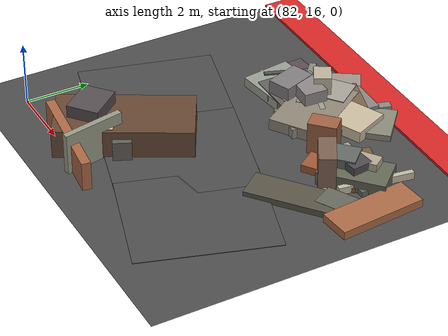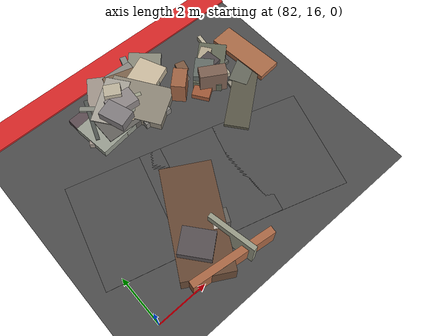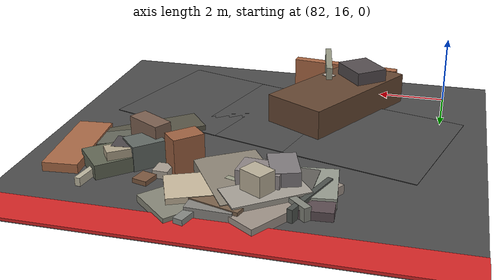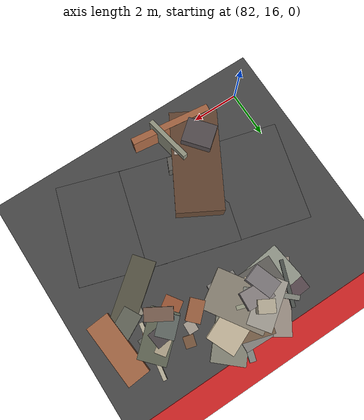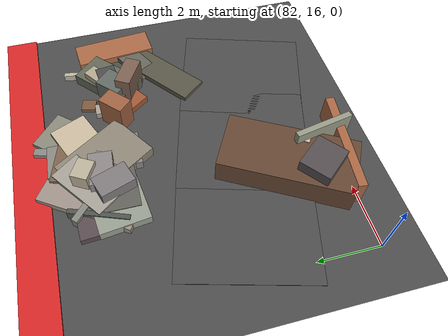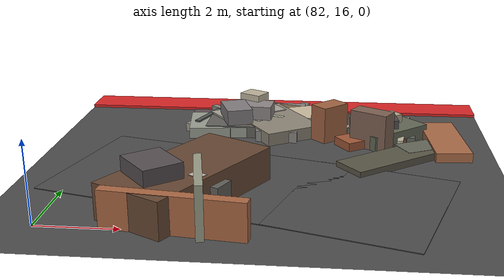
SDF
<sdf version="1.6">
 <world name="navitas_arena">
  <model name="ground_plane">
   <static>true</static>
   <link name="link">
    <collision name="collision">
     <geometry><plane><normal>0 0 1</normal><size>400 400</size></plane></geometry>
     <surface><friction><ode><mu>0.800</mu><mu2>0.800</mu2></ode></friction></surface>
    </collision>
    <visual name="visual">
     <cast_shadows>false</cast_shadows>
     <geometry><plane><normal>0 0 1</normal><size>400 400</size></plane></geometry>
     <material>
      <specular>0.04 0.04 0.04 1</specular>
      <script>
       <uri>file://media/materials/scripts/navitas_asphalt.material</uri>
       <name>Navitas/RealArenaAsphalt</name>
      </script>
     </material>
    </visual>
   </link>
  </model>
  <model name="brd_zor_N">
   <static>true</static>
   <pose>90.000 25.800 0.040 0 0 0.000</pose>
   <link name="link">
    <collision name="col"><geometry><box><size>53.200 1.600 0.080</size></box></geometry></collision>
    <visual name="vis">
     <geometry><box><size>53.200 1.600 0.080</size></box></geometry>
     <material>
      <ambient>0.85 0.15 0.15 1</ambient>
      <diffuse>0.85 0.15 0.15 1</diffuse>
      <specular>0.04 0.04 0.04 1</specular>
     </material>
    </visual>
   </link>
  </model>
  <model name="road_zor_3_24">
   <static>true</static>
   <pose>89.339 17.910 0.040 0 0 2.837</pose>
   <link name="link">
    <collision name="col"><geometry><box><size>3.631 4.200 0.020</size></box></geometry></collision>
    <visual name="vis">
     <geometry><box><size>3.631 4.200 0.020</size></box></geometry>
     <material>
      <specular>0.04 0.04 0.04 1</specular>
      <script>
       <uri>file://media/materials/scripts/navitas_asphalt.material</uri>
       <name>Navitas/RealArenaAsphalt</name>
      </script>
     </material>
    </visual>
   </link>
  </model>
  <model name="road_zor_3_25">
   <static>true</static>
   <pose>86.586 18.730 0.040 0 0 2.866</pose>
   <link name="link">
    <collision name="col"><geometry><box><size>3.915 4.200 0.020</size></box></geometry></collision>
    <visual name="vis">
     <geometry><box><size>3.915 4.200 0.020</size></box></geometry>
     <material>
      <specular>0.04 0.04 0.04 1</specular>
      <script>
       <uri>file://media/materials/scripts/navitas_asphalt.material</uri>
       <name>Navitas/RealArenaAsphalt</name>
      </script>
     </material>
    </visual>
   </link>
  </model>
  <model name="road_zor_3_26">
   <static>true</static>
   <pose>83.707 19.520 0.040 0 0 2.881</pose>
   <link name="link">
    <collision name="col"><geometry><box><size>3.855 4.200 0.020</size></box></geometry></collision>
    <visual name="vis">
     <geometry><box><size>3.855 4.200 0.020</size></box></geometry>
     <material>
      <specular>0.04 0.04 0.04 1</specular>
      <script>
       <uri>file://media/materials/scripts/navitas_asphalt.material</uri>
       <name>Navitas/RealArenaAsphalt</name>
      </script>
     </material>
    </visual>
   </link>
  </model>
  <model name="blk_zor_2_3_3">
   <static>true</static>
   <pose>85.344 16.767 0.000 0 0 0</pose>
   <link name="link">
    <collision name="col_0">
     <pose>0.185 0.300 0.461 0.000 0.000 0.975</pose>
     <geometry><box><size>0.261 0.336 0.922</size></box></geometry>
    </collision>
    <visual name="vis_0">
     <pose>0.185 0.300 0.461 0.000 0.000 0.975</pose>
     <geometry><box><size>0.261 0.336 0.922</size></box></geometry>
     <material>
      <ambient>0.74 0.70 0.65 1</ambient>
      <diffuse>0.80 0.75 0.70 1</diffuse>
      <specular>0.05 0.05 0.045 1</specular>
     </material>
    </visual>
    <collision name="col_1">
     <pose>0.241 0.659 0.328 0.000 0.000 2.717</pose>
     <geometry><box><size>1.172 0.563 0.656</size></box></geometry>
    </collision>
    <visual name="vis_1">
     <pose>0.241 0.659 0.328 0.000 0.000 2.717</pose>
     <geometry><box><size>1.172 0.563 0.656</size></box></geometry>
     <material>
      <ambient>0.36 0.34 0.32 1</ambient>
      <diffuse>0.38 0.37 0.35 1</diffuse>
      <specular>0.05 0.05 0.045 1</specular>
     </material>
    </visual>
    <collision name="col_2">
     <pose>-0.830 0.220 0.647 0.000 0.000 2.256</pose>
     <geometry><box><size>1.188 0.996 1.293</size></box></geometry>
    </collision>
    <visual name="vis_2">
     <pose>-0.830 0.220 0.647 0.000 0.000 2.256</pose>
     <geometry><box><size>1.188 0.996 1.293</size></box></geometry>
     <material>
      <ambient>0.32 0.29 0.29 1</ambient>
      <diffuse>0.34 0.31 0.32 1</diffuse>
      <specular>0.05 0.05 0.045 1</specular>
     </material>
    </visual>
    <collision name="col_3">
     <pose>-0.165 -0.839 0.458 0.000 0.000 3.022</pose>
     <geometry><box><size>3.356 0.281 0.916</size></box></geometry>
    </collision>
    <visual name="vis_3">
     <pose>-0.165 -0.839 0.458 0.000 0.000 3.022</pose>
     <geometry><box><size>3.356 0.281 0.916</size></box></geometry>
     <material>
      <ambient>0.62 0.38 0.25 1</ambient>
      <diffuse>0.67 0.41 0.27 1</diffuse>
      <specular>0.05 0.05 0.045 1</specular>
     </material>
    </visual>
    <collision name="col_4">
     <pose>0.299 -0.264 0.641 0.000 0.000 1.761</pose>
     <geometry><box><size>1.934 0.186 1.283</size></box></geometry>
    </collision>
    <visual name="vis_4">
     <pose>0.299 -0.264 0.641 0.000 0.000 1.761</pose>
     <geometry><box><size>1.934 0.186 1.283</size></box></geometry>
     <material>
      <ambient>0.55 0.56 0.49 1</ambient>
      <diffuse>0.60 0.61 0.53 1</diffuse>
      <specular>0.05 0.05 0.045 1</specular>
     </material>
    </visual>
    <collision name="col_5">
     <pose>0.365 0.943 0.295 0.000 0.000 1.458</pose>
     <geometry><box><size>0.307 0.430 0.589</size></box></geometry>
    </collision>
    <visual name="vis_5">
     <pose>0.365 0.943 0.295 0.000 0.000 1.458</pose>
     <geometry><box><size>0.307 0.430 0.589</size></box></geometry>
     <material>
      <ambient>0.43 0.26 0.19 1</ambient>
      <diffuse>0.47 0.28 0.20 1</diffuse>
      <specular>0.05 0.05 0.045 1</specular>
     </material>
    </visual>
    <collision name="col_6">
     <pose>-0.208 0.989 0.453 0.000 0.000 1.061</pose>
     <geometry><box><size>4.135 1.926 0.906</size></box></geometry>
    </collision>
    <visual name="vis_6">
     <pose>-0.208 0.989 0.453 0.000 0.000 1.061</pose>
     <geometry><box><size>4.135 1.926 0.906</size></box></geometry>
     <material>
      <ambient>0.37 0.26 0.19 1</ambient>
      <diffuse>0.40 0.28 0.20 1</diffuse>
      <specular>0.05 0.05 0.045 1</specular>
     </material>
    </visual>
   </link>
  </model>
  <model name="deb_zor_61">
   <static>true</static>
   <pose>87.345 23.802 0.000 0 0 0</pose>
   <link name="link">
    <collision name="col_0">
     <pose>-0.412 -0.286 0.157 0.000 0.000 1.533</pose>
     <geometry><box><size>2.917 1.187 0.314</size></box></geometry>
    </collision>
    <visual name="vis_0">
     <pose>-0.412 -0.286 0.157 0.000 0.000 1.533</pose>
     <geometry><box><size>2.917 1.187 0.314</size></box></geometry>
     <material>
      <ambient>0.50 0.49 0.47 1</ambient>
      <diffuse>0.54 0.53 0.51 1</diffuse>
      <specular>0.05 0.05 0.045 1</specular>
     </material>
    </visual>
    <collision name="col_1">
     <pose>-0.843 -0.285 0.181 0.000 0.000 -0.313</pose>
     <geometry><box><size>1.056 0.161 0.362</size></box></geometry>
    </collision>
    <visual name="vis_1">
     <pose>-0.843 -0.285 0.181 0.000 0.000 -0.313</pose>
     <geometry><box><size>1.056 0.161 0.362</size></box></geometry>
     <material>
      <ambient>0.57 0.59 0.50 1</ambient>
      <diffuse>0.62 0.63 0.54 1</diffuse>
      <specular>0.05 0.05 0.045 1</specular>
     </material>
    </visual>
    <collision name="col_2">
     <pose>-0.288 -0.134 0.179 0.000 0.000 0.409</pose>
     <geometry><box><size>2.785 1.222 0.358</size></box></geometry>
    </collision>
    <visual name="vis_2">
     <pose>-0.288 -0.134 0.179 0.000 0.000 0.409</pose>
     <geometry><box><size>2.785 1.222 0.358</size></box></geometry>
     <material>
      <ambient>0.74 0.69 0.59 1</ambient>
      <diffuse>0.80 0.74 0.63 1</diffuse>
      <specular>0.05 0.05 0.045 1</specular>
     </material>
    </visual>
    <collision name="col_3">
     <pose>-0.680 -0.170 0.100 0.000 0.000 1.468</pose>
     <geometry><box><size>1.597 0.995 0.200</size></box></geometry>
    </collision>
    <visual name="vis_3">
     <pose>-0.680 -0.170 0.100 0.000 0.000 1.468</pose>
     <geometry><box><size>1.597 0.995 0.200</size></box></geometry>
     <material>
      <ambient>0.63 0.37 0.28 1</ambient>
      <diffuse>0.68 0.40 0.30 1</diffuse>
      <specular>0.05 0.05 0.045 1</specular>
     </material>
    </visual>
    <collision name="col_4">
     <pose>0.011 0.816 0.115 0.000 0.000 1.282</pose>
     <geometry><box><size>1.559 0.262 0.231</size></box></geometry>
    </collision>
    <visual name="vis_4">
     <pose>0.011 0.816 0.115 0.000 0.000 1.282</pose>
     <geometry><box><size>1.559 0.262 0.231</size></box></geometry>
     <material>
      <ambient>0.49 0.50 0.48 1</ambient>
      <diffuse>0.53 0.54 0.52 1</diffuse>
      <specular>0.05 0.05 0.045 1</specular>
     </material>
    </visual>
    <collision name="col_5">
     <pose>0.256 0.195 0.099 0.000 0.000 0.847</pose>
     <geometry><box><size>2.517 1.373 0.198</size></box></geometry>
    </collision>
    <visual name="vis_5">
     <pose>0.256 0.195 0.099 0.000 0.000 0.847</pose>
     <geometry><box><size>2.517 1.373 0.198</size></box></geometry>
     <material>
      <ambient>0.50 0.50 0.44 1</ambient>
      <diffuse>0.54 0.54 0.48 1</diffuse>
      <specular>0.05 0.05 0.045 1</specular>
     </material>
    </visual>
   </link>
  </model>
  <model name="deb_zor_103">
   <static>true</static>
   <pose>85.871 23.565 0.000 0 0 0</pose>
   <link name="link">
    <collision name="col_0">
     <pose>-0.260 -0.384 0.143 0.000 0.000 2.045</pose>
     <geometry><box><size>1.470 0.944 0.285</size></box></geometry>
    </collision>
    <visual name="vis_0">
     <pose>-0.260 -0.384 0.143 0.000 0.000 2.045</pose>
     <geometry><box><size>1.470 0.944 0.285</size></box></geometry>
     <material>
      <ambient>0.42 0.31 0.23 1</ambient>
      <diffuse>0.45 0.33 0.25 1</diffuse>
      <specular>0.05 0.05 0.045 1</specular>
     </material>
    </visual>
    <collision name="col_1">
     <pose>-0.536 0.336 0.122 0.000 0.000 0.992</pose>
     <geometry><box><size>3.072 0.879 0.244</size></box></geometry>
    </collision>
    <visual name="vis_1">
     <pose>-0.536 0.336 0.122 0.000 0.000 0.992</pose>
     <geometry><box><size>3.072 0.879 0.244</size></box></geometry>
     <material>
      <ambient>0.58 0.53 0.50 1</ambient>
      <diffuse>0.63 0.58 0.54 1</diffuse>
      <specular>0.05 0.05 0.045 1</specular>
     </material>
    </visual>
    <collision name="col_2">
     <pose>-0.246 -0.446 0.153 0.000 0.000 0.126</pose>
     <geometry><box><size>2.754 1.569 0.306</size></box></geometry>
    </collision>
    <visual name="vis_2">
     <pose>-0.246 -0.446 0.153 0.000 0.000 0.126</pose>
     <geometry><box><size>2.754 1.569 0.306</size></box></geometry>
     <material>
      <ambient>0.56 0.58 0.53 1</ambient>
      <diffuse>0.60 0.62 0.57 1</diffuse>
      <specular>0.05 0.05 0.045 1</specular>
     </material>
    </visual>
    <collision name="col_3">
     <pose>0.046 -0.439 0.167 0.000 0.000 -0.011</pose>
     <geometry><box><size>2.218 1.501 0.334</size></box></geometry>
    </collision>
    <visual name="vis_3">
     <pose>0.046 -0.439 0.167 0.000 0.000 -0.011</pose>
     <geometry><box><size>2.218 1.501 0.334</size></box></geometry>
     <material>
      <ambient>0.36 0.35 0.33 1</ambient>
      <diffuse>0.39 0.38 0.36 1</diffuse>
      <specular>0.05 0.05 0.045 1</specular>
     </material>
    </visual>
    <collision name="col_4">
     <pose>0.022 0.279 0.194 0.000 0.000 0.638</pose>
     <geometry><box><size>2.068 1.023 0.389</size></box></geometry>
    </collision>
    <visual name="vis_4">
     <pose>0.022 0.279 0.194 0.000 0.000 0.638</pose>
     <geometry><box><size>2.068 1.023 0.389</size></box></geometry>
     <material>
      <ambient>0.61 0.59 0.56 1</ambient>
      <diffuse>0.66 0.64 0.60 1</diffuse>
      <specular>0.05 0.05 0.045 1</specular>
     </material>
    </visual>
   </link>
  </model>
  <model name="deb_zor_232">
   <static>true</static>
   <pose>86.352 23.901 0.000 0 0 0</pose>
   <link name="link">
    <collision name="col_0">
     <pose>0.534 0.292 0.172 0.000 0.000 -0.288</pose>
     <geometry><box><size>1.622 1.115 0.343</size></box></geometry>
    </collision>
    <visual name="vis_0">
     <pose>0.534 0.292 0.172 0.000 0.000 -0.288</pose>
     <geometry><box><size>1.622 1.115 0.343</size></box></geometry>
     <material>
      <ambient>0.46 0.36 0.27 1</ambient>
      <diffuse>0.49 0.39 0.30 1</diffuse>
      <specular>0.05 0.05 0.045 1</specular>
     </material>
    </visual>
    <collision name="col_1">
     <pose>-0.251 -0.545 0.378 0.000 0.000 -0.067</pose>
     <geometry><box><size>1.134 0.739 0.756</size></box></geometry>
    </collision>
    <visual name="vis_1">
     <pose>-0.251 -0.545 0.378 0.000 0.000 -0.067</pose>
     <geometry><box><size>1.134 0.739 0.756</size></box></geometry>
     <material>
      <ambient>0.52 0.49 0.50 1</ambient>
      <diffuse>0.56 0.53 0.53 1</diffuse>
      <specular>0.05 0.05 0.045 1</specular>
     </material>
    </visual>
    <collision name="col_2">
     <pose>0.509 0.193 0.091 0.000 0.000 0.950</pose>
     <geometry><box><size>1.021 0.182 0.182</size></box></geometry>
    </collision>
    <visual name="vis_2">
     <pose>0.509 0.193 0.091 0.000 0.000 0.950</pose>
     <geometry><box><size>1.021 0.182 0.182</size></box></geometry>
     <material>
      <ambient>0.62 0.33 0.27 1</ambient>
      <diffuse>0.66 0.36 0.29 1</diffuse>
      <specular>0.05 0.05 0.045 1</specular>
     </material>
    </visual>
    <collision name="col_3">
     <pose>-0.277 -0.027 0.474 0.000 0.000 1.056</pose>
     <geometry><box><size>0.533 0.670 0.947</size></box></geometry>
    </collision>
    <visual name="vis_3">
     <pose>-0.277 -0.027 0.474 0.000 0.000 1.056</pose>
     <geometry><box><size>0.533 0.670 0.947</size></box></geometry>
     <material>
      <ambient>0.69 0.65 0.56 1</ambient>
      <diffuse>0.74 0.70 0.61 1</diffuse>
      <specular>0.05 0.05 0.045 1</specular>
     </material>
    </visual>
    <collision name="col_4">
     <pose>0.378 -0.185 0.089 0.000 0.000 0.775</pose>
     <geometry><box><size>1.981 0.294 0.178</size></box></geometry>
    </collision>
    <visual name="vis_4">
     <pose>0.378 -0.185 0.089 0.000 0.000 0.775</pose>
     <geometry><box><size>1.981 0.294 0.178</size></box></geometry>
     <material>
      <ambient>0.44 0.29 0.21 1</ambient>
      <diffuse>0.48 0.31 0.22 1</diffuse>
      <specular>0.05 0.05 0.045 1</specular>
     </material>
    </visual>
   </link>
  </model>
  <model name="deb_zor_277">
   <static>true</static>
   <pose>85.793 23.462 0.000 0 0 0</pose>
   <link name="link">
    <collision name="col_0">
     <pose>-0.177 -0.404 0.385 0.000 0.000 1.906</pose>
     <geometry><box><size>1.118 0.742 0.771</size></box></geometry>
    </collision>
    <visual name="vis_0">
     <pose>-0.177 -0.404 0.385 0.000 0.000 1.906</pose>
     <geometry><box><size>1.118 0.742 0.771</size></box></geometry>
     <material>
      <ambient>0.48 0.45 0.46 1</ambient>
      <diffuse>0.51 0.49 0.50 1</diffuse>
      <specular>0.05 0.05 0.045 1</specular>
     </material>
    </visual>
    <collision name="col_1">
     <pose>0.927 -0.234 0.180 0.000 0.000 2.152</pose>
     <geometry><box><size>2.557 1.726 0.361</size></box></geometry>
    </collision>
    <visual name="vis_1">
     <pose>0.927 -0.234 0.180 0.000 0.000 2.152</pose>
     <geometry><box><size>2.557 1.726 0.361</size></box></geometry>
     <material>
      <ambient>0.52 0.49 0.43 1</ambient>
      <diffuse>0.56 0.53 0.47 1</diffuse>
      <specular>0.05 0.05 0.045 1</specular>
     </material>
    </visual>
    <collision name="col_2">
     <pose>0.734 0.054 0.104 0.000 0.000 2.528</pose>
     <geometry><box><size>1.802 0.254 0.209</size></box></geometry>
    </collision>
    <visual name="vis_2">
     <pose>0.734 0.054 0.104 0.000 0.000 2.528</pose>
     <geometry><box><size>1.802 0.254 0.209</size></box></geometry>
     <material>
      <ambient>0.45 0.47 0.44 1</ambient>
      <diffuse>0.49 0.50 0.47 1</diffuse>
      <specular>0.05 0.05 0.045 1</specular>
     </material>
    </visual>
    <collision name="col_3">
     <pose>-0.238 0.177 0.184 0.000 0.000 2.410</pose>
     <geometry><box><size>2.191 0.204 0.368</size></box></geometry>
    </collision>
    <visual name="vis_3">
     <pose>-0.238 0.177 0.184 0.000 0.000 2.410</pose>
     <geometry><box><size>2.191 0.204 0.368</size></box></geometry>
     <material>
      <ambient>0.49 0.50 0.46 1</ambient>
      <diffuse>0.53 0.54 0.50 1</diffuse>
      <specular>0.05 0.05 0.045 1</specular>
     </material>
    </visual>
    <collision name="col_4">
     <pose>-0.839 0.517 0.119 0.000 0.000 3.211</pose>
     <geometry><box><size>1.583 0.695 0.239</size></box></geometry>
    </collision>
    <visual name="vis_4">
     <pose>-0.839 0.517 0.119 0.000 0.000 3.211</pose>
     <geometry><box><size>1.583 0.695 0.239</size></box></geometry>
     <material>
      <ambient>0.33 0.28 0.29 1</ambient>
      <diffuse>0.36 0.30 0.32 1</diffuse>
      <specular>0.05 0.05 0.045 1</specular>
     </material>
    </visual>
    <collision name="col_5">
     <pose>-0.981 0.194 0.177 0.000 0.000 1.216</pose>
     <geometry><box><size>1.873 0.152 0.355</size></box></geometry>
    </collision>
    <visual name="vis_5">
     <pose>-0.981 0.194 0.177 0.000 0.000 1.216</pose>
     <geometry><box><size>1.873 0.152 0.355</size></box></geometry>
     <material>
      <ambient>0.28 0.30 0.28 1</ambient>
      <diffuse>0.31 0.33 0.31 1</diffuse>
      <specular>0.05 0.05 0.045 1</specular>
     </material>
    </visual>
   </link>
  </model>
  <model name="deb_zor_280">
   <static>true</static>
   <pose>89.411 22.802 0.000 0 0 0</pose>
   <link name="link">
    <collision name="col_0">
     <pose>0.142 -0.344 0.351 0.000 0.000 2.329</pose>
     <geometry><box><size>0.765 0.928 0.702</size></box></geometry>
    </collision>
    <visual name="vis_0">
     <pose>0.142 -0.344 0.351 0.000 0.000 2.329</pose>
     <geometry><box><size>0.765 0.928 0.702</size></box></geometry>
     <material>
      <ambient>0.36 0.39 0.37 1</ambient>
      <diffuse>0.39 0.42 0.40 1</diffuse>
      <specular>0.05 0.05 0.045 1</specular>
     </material>
    </visual>
    <collision name="col_1">
     <pose>-0.230 0.633 0.065 0.000 0.000 1.311</pose>
     <geometry><box><size>0.466 0.430 0.129</size></box></geometry>
    </collision>
    <visual name="vis_1">
     <pose>-0.230 0.633 0.065 0.000 0.000 1.311</pose>
     <geometry><box><size>0.466 0.430 0.129</size></box></geometry>
     <material>
      <ambient>0.45 0.33 0.23 1</ambient>
      <diffuse>0.49 0.35 0.25 1</diffuse>
      <specular>0.05 0.05 0.045 1</specular>
     </material>
    </visual>
    <collision name="col_2">
     <pose>-1.037 -0.249 0.517 0.000 0.000 0.766</pose>
     <geometry><box><size>0.874 0.572 1.034</size></box></geometry>
    </collision>
    <visual name="vis_2">
     <pose>-1.037 -0.249 0.517 0.000 0.000 0.766</pose>
     <geometry><box><size>0.874 0.572 1.034</size></box></geometry>
     <material>
      <ambient>0.59 0.36 0.24 1</ambient>
      <diffuse>0.63 0.39 0.26 1</diffuse>
      <specular>0.05 0.05 0.045 1</specular>
     </material>
    </visual>
    <collision name="col_3">
     <pose>-0.579 0.195 0.107 0.000 0.000 1.541</pose>
     <geometry><box><size>0.479 0.422 0.215</size></box></geometry>
    </collision>
    <visual name="vis_3">
     <pose>-0.579 0.195 0.107 0.000 0.000 1.541</pose>
     <geometry><box><size>0.479 0.422 0.215</size></box></geometry>
     <material>
      <ambient>0.62 0.58 0.54 1</ambient>
      <diffuse>0.67 0.63 0.58 1</diffuse>
      <specular>0.05 0.05 0.045 1</specular>
     </material>
    </visual>
   </link>
  </model>
  <model name="deb_zor_377">
   <static>true</static>
   <pose>90.246 21.716 0.000 0 0 0</pose>
   <link name="link">
    <collision name="col_0">
     <pose>-0.674 0.211 0.524 0.000 0.000 2.613</pose>
     <geometry><box><size>1.102 0.520 1.048</size></box></geometry>
    </collision>
    <visual name="vis_0">
     <pose>-0.674 0.211 0.524 0.000 0.000 2.613</pose>
     <geometry><box><size>1.102 0.520 1.048</size></box></geometry>
     <material>
      <ambient>0.45 0.35 0.29 1</ambient>
      <diffuse>0.49 0.38 0.32 1</diffuse>
      <specular>0.05 0.05 0.045 1</specular>
     </material>
    </visual>
    <collision name="col_1">
     <pose>-0.205 0.924 0.325 0.000 0.000 1.687</pose>
     <geometry><box><size>0.650 0.533 0.649</size></box></geometry>
    </collision>
    <visual name="vis_1">
     <pose>-0.205 0.924 0.325 0.000 0.000 1.687</pose>
     <geometry><box><size>0.650 0.533 0.649</size></box></geometry>
     <material>
      <ambient>0.29 0.27 0.28 1</ambient>
      <diffuse>0.31 0.29 0.30 1</diffuse>
      <specular>0.05 0.05 0.045 1</specular>
     </material>
    </visual>
    <collision name="col_2">
     <pose>-0.213 -1.041 0.098 0.000 0.000 0.673</pose>
     <geometry><box><size>2.845 0.987 0.195</size></box></geometry>
    </collision>
    <visual name="vis_2">
     <pose>-0.213 -1.041 0.098 0.000 0.000 0.673</pose>
     <geometry><box><size>2.845 0.987 0.195</size></box></geometry>
     <material>
      <ambient>0.32 0.31 0.26 1</ambient>
      <diffuse>0.35 0.34 0.28 1</diffuse>
      <specular>0.05 0.05 0.045 1</specular>
     </material>
    </visual>
    <collision name="col_3">
     <pose>0.793 -0.080 0.100 0.000 0.000 0.485</pose>
     <geometry><box><size>1.499 0.774 0.199</size></box></geometry>
    </collision>
    <visual name="vis_3">
     <pose>0.793 -0.080 0.100 0.000 0.000 0.485</pose>
     <geometry><box><size>1.499 0.774 0.199</size></box></geometry>
     <material>
      <ambient>0.37 0.38 0.33 1</ambient>
      <diffuse>0.40 0.41 0.36 1</diffuse>
      <specular>0.05 0.05 0.045 1</specular>
     </material>
    </visual>
    <collision name="col_4">
     <pose>-0.213 1.252 0.324 0.000 0.000 2.191</pose>
     <geometry><box><size>0.464 0.767 0.648</size></box></geometry>
    </collision>
    <visual name="vis_4">
     <pose>-0.213 1.252 0.324 0.000 0.000 2.191</pose>
     <geometry><box><size>0.464 0.767 0.648</size></box></geometry>
     <material>
      <ambient>0.65 0.61 0.52 1</ambient>
      <diffuse>0.71 0.66 0.56 1</diffuse>
      <specular>0.05 0.05 0.045 1</specular>
     </material>
    </visual>
    <collision name="col_5">
     <pose>0.088 0.557 0.079 0.000 0.000 0.830</pose>
     <geometry><box><size>0.300 0.364 0.159</size></box></geometry>
    </collision>
    <visual name="vis_5">
     <pose>0.088 0.557 0.079 0.000 0.000 0.830</pose>
     <geometry><box><size>0.300 0.364 0.159</size></box></geometry>
     <material>
      <ambient>0.56 0.31 0.20 1</ambient>
      <diffuse>0.60 0.34 0.22 1</diffuse>
      <specular>0.05 0.05 0.045 1</specular>
     </material>
    </visual>
    <collision name="col_6">
     <pose>-0.913 0.425 0.120 0.000 0.000 0.605</pose>
     <geometry><box><size>1.416 0.727 0.241</size></box></geometry>
    </collision>
    <visual name="vis_6">
     <pose>-0.913 0.425 0.120 0.000 0.000 0.605</pose>
     <geometry><box><size>1.416 0.727 0.241</size></box></geometry>
     <material>
      <ambient>0.58 0.32 0.20 1</ambient>
      <diffuse>0.63 0.35 0.22 1</diffuse>
      <specular>0.05 0.05 0.045 1</specular>
     </material>
    </visual>
   </link>
  </model>
  <model name="deb_zor_394">
   <static>true</static>
   <pose>90.460 22.170 0.000 0 0 0</pose>
   <link name="link">
    <collision name="col_0">
     <pose>-0.418 0.437 0.204 0.000 0.000 0.736</pose>
     <geometry><box><size>2.047 1.156 0.407</size></box></geometry>
    </collision>
    <visual name="vis_0">
     <pose>-0.418 0.437 0.204 0.000 0.000 0.736</pose>
     <geometry><box><size>2.047 1.156 0.407</size></box></geometry>
     <material>
      <ambient>0.36 0.38 0.32 1</ambient>
      <diffuse>0.39 0.41 0.34 1</diffuse>
      <specular>0.05 0.05 0.045 1</specular>
     </material>
    </visual>
    <collision name="col_1">
     <pose>1.162 0.024 0.129 0.000 0.000 1.658</pose>
     <geometry><box><size>2.705 0.980 0.257</size></box></geometry>
    </collision>
    <visual name="vis_1">
     <pose>1.162 0.024 0.129 0.000 0.000 1.658</pose>
     <geometry><box><size>2.705 0.980 0.257</size></box></geometry>
     <material>
      <ambient>0.62 0.39 0.26 1</ambient>
      <diffuse>0.67 0.42 0.28 1</diffuse>
      <specular>0.05 0.05 0.045 1</specular>
     </material>
    </visual>
    <collision name="col_2">
     <pose>0.126 0.346 0.081 0.000 0.000 1.581</pose>
     <geometry><box><size>0.374 0.479 0.162</size></box></geometry>
    </collision>
    <visual name="vis_2">
     <pose>0.126 0.346 0.081 0.000 0.000 1.581</pose>
     <geometry><box><size>0.374 0.479 0.162</size></box></geometry>
     <material>
      <ambient>0.36 0.37 0.35 1</ambient>
      <diffuse>0.39 0.40 0.37 1</diffuse>
      <specular>0.05 0.05 0.045 1</specular>
     </material>
    </visual>
    <collision name="col_3">
     <pose>0.081 0.796 0.115 0.000 0.000 1.418</pose>
     <geometry><box><size>2.313 0.159 0.230</size></box></geometry>
    </collision>
    <visual name="vis_3">
     <pose>0.081 0.796 0.115 0.000 0.000 1.418</pose>
     <geometry><box><size>2.313 0.159 0.230</size></box></geometry>
     <material>
      <ambient>0.69 0.67 0.58 1</ambient>
      <diffuse>0.75 0.72 0.63 1</diffuse>
      <specular>0.05 0.05 0.045 1</specular>
     </material>
    </visual>
    <collision name="col_4">
     <pose>-0.257 -0.785 0.062 0.000 0.000 2.967</pose>
     <geometry><box><size>0.290 0.401 0.124</size></box></geometry>
    </collision>
    <visual name="vis_4">
     <pose>-0.257 -0.785 0.062 0.000 0.000 2.967</pose>
     <geometry><box><size>0.290 0.401 0.124</size></box></geometry>
     <material>
      <ambient>0.54 0.53 0.47 1</ambient>
      <diffuse>0.59 0.57 0.51 1</diffuse>
      <specular>0.05 0.05 0.045 1</specular>
     </material>
    </visual>
    <collision name="col_5">
     <pose>-0.301 0.839 0.092 0.000 0.000 1.982</pose>
     <geometry><box><size>0.482 0.428 0.183</size></box></geometry>
    </collision>
    <visual name="vis_5">
     <pose>-0.301 0.839 0.092 0.000 0.000 1.982</pose>
     <geometry><box><size>0.482 0.428 0.183</size></box></geometry>
     <material>
      <ambient>0.42 0.31 0.23 1</ambient>
      <diffuse>0.45 0.34 0.25 1</diffuse>
      <specular>0.05 0.05 0.045 1</specular>
     </material>
    </visual>
   </link>
  </model>
 </world>
</sdf>
